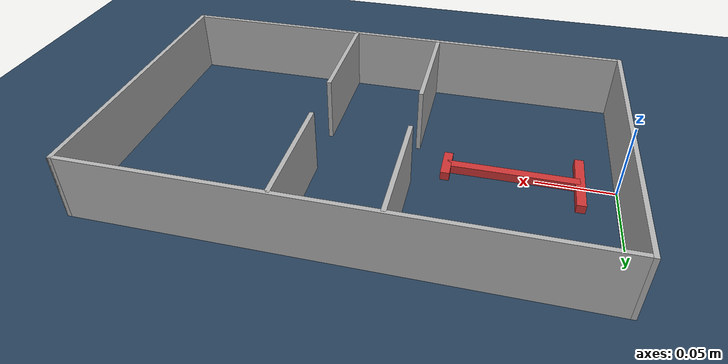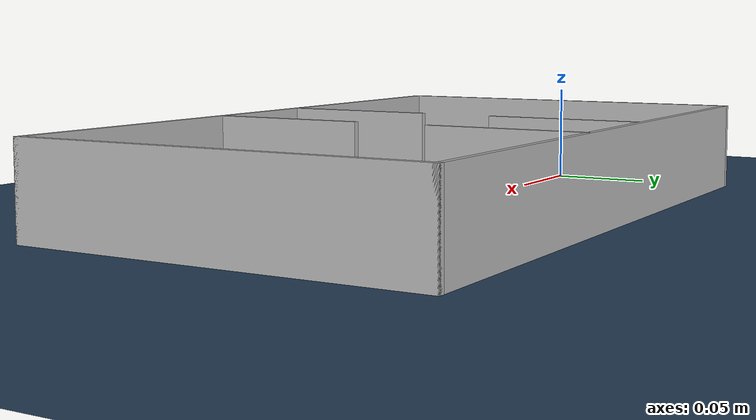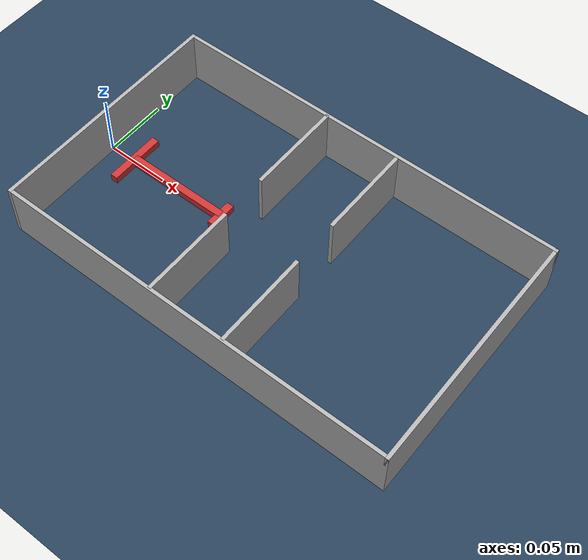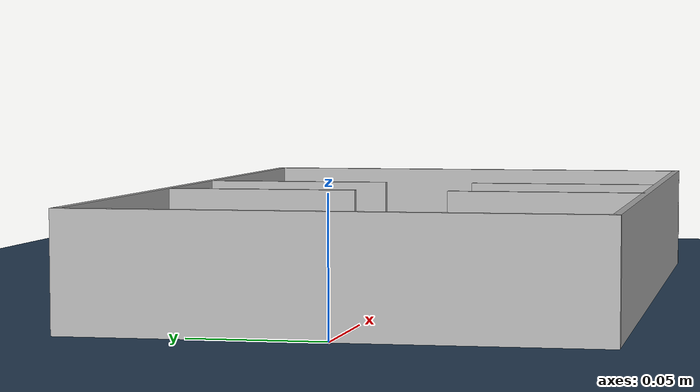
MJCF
<mujoco model="ant_puzzle_recreation">
  <option timestep="0.01" gravity="0 0 -9.81" density="1.2" viscosity="0.1"/>

  <visual>
    <headlight diffuse="0.6 0.6 0.6" ambient="0.3 0.3 0.3" specular="0 0 0"/>
    <rgba haze="0.15 0.25 0.35 1"/>
    <global azimuth="120" elevation="-20"/>
  </visual>

  <asset>
    <texture type="skybox" builtin="gradient" rgb1="0.3 0.5 0.7" rgb2="0 0 0" width="512" height="3072"/>
    <texture type="2d" name="groundplane" builtin="checker" mark="edge" rgb1="0.2 0.3 0.4" rgb2="0.1 0.2 0.3" markrgb="0.8 0.8 0.8" width="300" height="300"/>
    <material name="groundplane" texture="groundplane" texuniform="true" texrepeat="5 5"/>
  </asset>

  <worldbody>
    <!-- Floor -->
    <geom name="floor" size="10 10 0.05" type="plane" material="groundplane" contype="1" conaffinity="1"/>

    <!-- WALLS (The Puzzle) -->
    <body name="puzzle_walls" pos="0 0 0.0220">
        <geom name="wall_left" type="box" pos="0 0 0" size="0.00145 0.0975 0.0220" rgba="0.7 0.7 0.7 1"/>
        <geom name="wall_back" type="box" pos="0.16185 -0.09605 0" size="0.1604 0.00145 0.0220" rgba="0.7 0.7 0.7 1"/>
        <geom name="wall_front" type="box" pos="0.16185 0.09605 0" size="0.1604 0.00145 0.0220" rgba="0.7 0.7 0.7 1"/>
        <geom name="wall_slit1_bottom" type="box" pos="0.12920 -0.05725 0" size="0.00145 0.0388 0.0220" rgba="0.7 0.7 0.7 1"/>
        <geom name="wall_slit1_top" type="box" pos="0.12920 0.05725 0" size="0.00145 0.0388 0.0220" rgba="0.7 0.7 0.7 1"/>
        <geom name="wall_slit2_bottom" type="box" pos="0.19160 -0.05725 0" size="0.00145 0.0388 0.0220" rgba="0.7 0.7 0.7 1"/>
        <geom name="wall_slit2_top" type="box" pos="0.19160 0.05725 0" size="0.00145 0.0388 0.0220" rgba="0.7 0.7 0.7 1"/>
        <geom name="wall_right" type="box" pos="0.3208 0 0" size="0.00145 0.0975 0.0220" rgba="0.7 0.7 0.7 1"/>
    </body>

    <!-- THE T-SHAPED LOAD - Based on Table S1 "small ant (exp)" dimensions     -->
    <!-- All dimensions from cm -> m.                                           -->
    <body name="load" pos="0.065 0 0.00295">
      <joint name="slide_x" type="slide" axis="1 0 0" damping="100.0"/>
      <joint name="slide_y" type="slide" axis="0 1 0" damping="100.0"/>
      <joint name="hinge_z" type="hinge" axis="0 0 1" damping="100.0"/>

      <!-- The T-Shape Geometry (using half-extents for 'size') -->
      <geom name="main_bar" type="box" size="0.04205 0.00295 0.00295" rgba="0.8 0.2 0.2 1" density="1000"/>
      <!-- long crossbar: length=0.58, width=0.09. size = [0.29, 0.045, 0.05] -->
      <geom name="long_bar" type="box" pos="-0.04205 0 0" size="0.00295 0.02295 0.00295" rgba="0.8 0.2 0.2 1" density="1000"/>

      <!-- short crossbar: length=0.29, width=0.09. size = [0.0045, 0.0145, 0.01] -->
      <!-- Positioned relative to the long_bar's center to form a T -->
      <geom name="short_bar" type="box" pos="0.04205 0 0" size="0.00295 0.01095 0.00295" rgba="0.8 0.2 0.2 1" density="1000"/>
    </body>
  </worldbody>
</mujoco>
